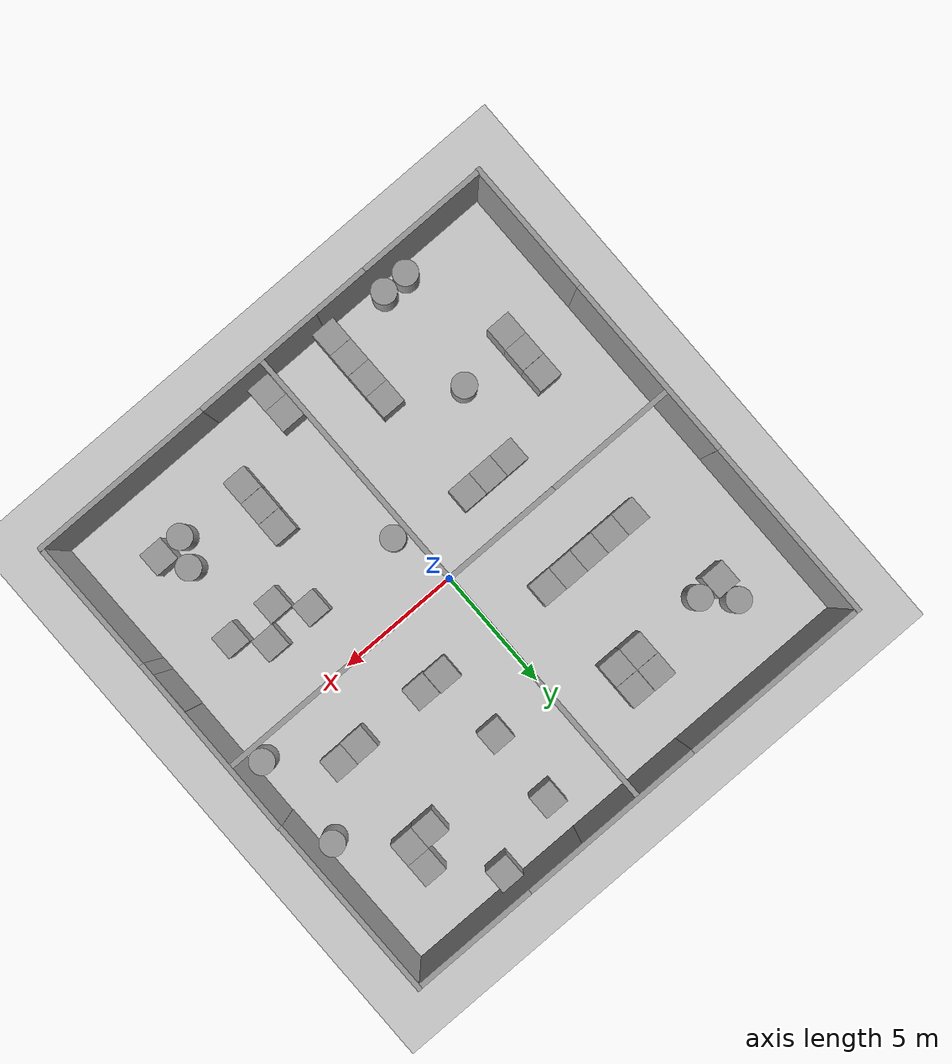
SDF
<sdf version="1.6">
 <world name="default">
  <light name="sun" type="directional">
   <pose>0 0 10 0 -0 0</pose>
   <diffuse>0.8 0.8 0.8 1</diffuse>
   <specular>0.1 0.1 0.1 1</specular>
   <attenuation>
    <range>1000</range>
    <constant>0.9</constant>
    <linear>0.01</linear>
    <quadratic>0.001</quadratic>
   </attenuation>
   <direction>-0.5 0.5 -1</direction>
  </light>
  <model name="ground_plane">
   <static>1</static>
   <link name="link">
    <collision name="collision">
     <geometry><plane><normal>0 0 1</normal><size>100 100</size></plane></geometry>
     <surface><friction><ode><mu>100</mu><mu2>50</mu2></ode></friction></surface>
    </collision>
    <visual name="visual">
     <cast_shadows>0</cast_shadows>
     <geometry><plane><normal>0 0 1</normal><size>100 100</size></plane></geometry>
     <material>
      <script><uri>file://media/materials/scripts/gazebo.material</uri><name>Gazebo/Grey</name></script>
     </material>
    </visual>
   </link>
  </model>
  <gravity>0 0 -9.8</gravity>
  <magnetic_field>6e-06 2.3e-05 -4.2e-05</magnetic_field>
  <atmosphere type="adiabatic"/>
  <physics name="default_physics" default="0" type="ode">
   <max_step_size>0.001</max_step_size>
   <real_time_factor>1</real_time_factor>
   <real_time_update_rate>1000</real_time_update_rate>
  </physics>
  <scene><ambient>0.4 0.4 0.4 1</ambient><background>0.7 0.7 0.7 1</background><shadows>1</shadows></scene>
  <spherical_coordinates>
   <surface_model>EARTH_WGS84</surface_model>
   <latitude_deg>0</latitude_deg>
   <longitude_deg>0</longitude_deg>
   <elevation>0</elevation>
   <heading_deg>0</heading_deg>
  </spherical_coordinates>
  <model name="unit_box_0">
   <pose>-2.49844 -9.49776 0.499995 1e-05 -0 0.001525</pose>
   <link name="link">
    <inertial>
     <mass>1</mass>
     <inertia>
      <ixx>0.166667</ixx>
      <ixy>0</ixy>
      <ixz>0</ixz>
      <iyy>0.166667</iyy>
      <iyz>0</iyz>
      <izz>0.166667</izz>
     </inertia>
    </inertial>
    <collision name="collision"><geometry><box><size>1 1 1</size></box></geometry></collision>
    <visual name="visual">
     <geometry><box><size>1 1 1</size></box></geometry>
     <material>
      <script><name>Gazebo/Grey</name><uri>file://media/materials/scripts/gazebo.material</uri></script>
     </material>
    </visual>
   </link>
  </model>
  <model name="unit_box_1">
   <pose>-2.49776 -8.49763 0.499995 0 1e-05 0.001523</pose>
   <link name="link">
    <inertial>
     <mass>1</mass>
     <inertia>
      <ixx>0.166667</ixx>
      <ixy>0</ixy>
      <ixz>0</ixz>
      <iyy>0.166667</iyy>
      <iyz>0</iyz>
      <izz>0.166667</izz>
     </inertia>
    </inertial>
    <collision name="collision"><geometry><box><size>1 1 1</size></box></geometry></collision>
    <visual name="visual">
     <geometry><box><size>1 1 1</size></box></geometry>
     <material>
      <script><name>Gazebo/Grey</name><uri>file://media/materials/scripts/gazebo.material</uri></script>
     </material>
    </visual>
   </link>
  </model>
  <model name="unit_box_2">
   <pose>-3.55815 -1.95195 0.5 0 -0 0.001237</pose>
   <link name="link">
    <inertial>
     <mass>1</mass>
     <inertia>
      <ixx>0.166667</ixx>
      <ixy>0</ixy>
      <ixz>0</ixz>
      <iyy>0.166667</iyy>
      <iyz>0</iyz>
      <izz>0.166667</izz>
     </inertia>
    </inertial>
    <collision name="collision"><geometry><box><size>1 1 1</size></box></geometry></collision>
    <visual name="visual">
     <geometry><box><size>1 1 1</size></box></geometry>
     <material>
      <script><name>Gazebo/Grey</name><uri>file://media/materials/scripts/gazebo.material</uri></script>
     </material>
    </visual>
   </link>
  </model>
  <model name="unit_box_3">
   <pose>-7.47853 -5.48862 0.499995 1e-05 -0 0.001882</pose>
   <link name="link">
    <inertial>
     <mass>1</mass>
     <inertia>
      <ixx>0.166667</ixx>
      <ixy>0</ixy>
      <ixz>0</ixz>
      <iyy>0.166667</iyy>
      <iyz>0</iyz>
      <izz>0.166667</izz>
     </inertia>
    </inertial>
    <collision name="collision"><geometry><box><size>1 1 1</size></box></geometry></collision>
    <visual name="visual">
     <geometry><box><size>1 1 1</size></box></geometry>
     <material>
      <script><name>Gazebo/Grey</name><uri>file://media/materials/scripts/gazebo.material</uri></script>
     </material>
    </visual>
   </link>
  </model>
  <model name="unit_box_4">
   <pose>-2.50633 -6.49754 0.499995 1e-05 -0 0.00159</pose>
   <link name="link">
    <inertial>
     <mass>1</mass>
     <inertia>
      <ixx>0.166667</ixx>
      <ixy>0</ixy>
      <ixz>0</ixz>
      <iyy>0.166667</iyy>
      <iyz>0</iyz>
      <izz>0.166667</izz>
     </inertia>
    </inertial>
    <collision name="collision"><geometry><box><size>1 1 1</size></box></geometry></collision>
    <visual name="visual">
     <geometry><box><size>1 1 1</size></box></geometry>
     <material>
      <script><name>Gazebo/Grey</name><uri>file://media/materials/scripts/gazebo.material</uri></script>
     </material>
    </visual>
   </link>
  </model>
  <model name="unit_cylinder_0">
   <pose>-5.03018 -9.50399 0.499996 2e-06 -0 0</pose>
   <link name="link">
    <inertial>
     <mass>1</mass>
     <inertia><ixx>0.145833</ixx><ixy>0</ixy><ixz>0</ixz><iyy>0.145833</iyy><iyz>0</iyz><izz>0.125</izz></inertia>
    </inertial>
    <collision name="collision">
     <geometry><cylinder><radius>0.5</radius><length>1</length></cylinder></geometry>
    </collision>
    <visual name="visual">
     <geometry><cylinder><radius>0.5</radius><length>1</length></cylinder></geometry>
     <material>
      <script><name>Gazebo/Grey</name><uri>file://media/materials/scripts/gazebo.material</uri></script>
     </material>
    </visual>
   </link>
  </model>
  <model name="unit_cylinder_1">
   <pose>-6.06796 -9.50399 0.499993 -2e-06 0 0</pose>
   <link name="link">
    <inertial>
     <mass>1</mass>
     <inertia><ixx>0.145833</ixx><ixy>0</ixy><ixz>0</ixz><iyy>0.145833</iyy><iyz>0</iyz><izz>0.125</izz></inertia>
    </inertial>
    <collision name="collision">
     <geometry><cylinder><radius>0.5</radius><length>1</length></cylinder></geometry>
    </collision>
    <visual name="visual">
     <geometry><cylinder><radius>0.5</radius><length>1</length></cylinder></geometry>
     <material>
      <script><name>Gazebo/Grey</name><uri>file://media/materials/scripts/gazebo.material</uri></script>
     </material>
    </visual>
   </link>
  </model>
  <model name="unit_box_5">
   <pose>-2.50217 -7.49759 0.499995 1e-05 -0 0.0015</pose>
   <link name="link">
    <inertial>
     <mass>1</mass>
     <inertia>
      <ixx>0.166667</ixx>
      <ixy>0</ixy>
      <ixz>0</ixz>
      <iyy>0.166667</iyy>
      <iyz>0</iyz>
      <izz>0.166667</izz>
     </inertia>
    </inertial>
    <collision name="collision"><geometry><box><size>1 1 1</size></box></geometry></collision>
    <visual name="visual">
     <geometry><box><size>1 1 1</size></box></geometry>
     <material>
      <script><name>Gazebo/Grey</name><uri>file://media/materials/scripts/gazebo.material</uri></script>
     </material>
    </visual>
   </link>
  </model>
  <model name="unit_box_6">
   <pose>-7.47739 -4.4886 0.499995 1e-05 -0 0.001886</pose>
   <link name="link">
    <inertial>
     <mass>1</mass>
     <inertia>
      <ixx>0.166667</ixx>
      <ixy>0</ixy>
      <ixz>0</ixz>
      <iyy>0.166667</iyy>
      <iyz>0</iyz>
      <izz>0.166667</izz>
     </inertia>
    </inertial>
    <collision name="collision"><geometry><box><size>1 1 1</size></box></geometry></collision>
    <visual name="visual">
     <geometry><box><size>1 1 1</size></box></geometry>
     <material>
      <script><name>Gazebo/Grey</name><uri>file://media/materials/scripts/gazebo.material</uri></script>
     </material>
    </visual>
   </link>
  </model>
  <model name="unit_box_7">
   <pose>-4.55826 -1.95244 0.5 0 -0 0.001449</pose>
   <link name="link">
    <inertial>
     <mass>1</mass>
     <inertia>
      <ixx>0.166667</ixx>
      <ixy>0</ixy>
      <ixz>0</ixz>
      <iyy>0.166667</iyy>
      <iyz>0</iyz>
      <izz>0.166667</izz>
     </inertia>
    </inertial>
    <collision name="collision"><geometry><box><size>1 1 1</size></box></geometry></collision>
    <visual name="visual">
     <geometry><box><size>1 1 1</size></box></geometry>
     <material>
      <script><name>Gazebo/Grey</name><uri>file://media/materials/scripts/gazebo.material</uri></script>
     </material>
    </visual>
   </link>
  </model>
  <model name="unit_cylinder_2">
   <pose>-5.02407 -4.99371 0.499997 0 -0 0</pose>
   <link name="link">
    <inertial>
     <mass>1</mass>
     <inertia><ixx>0.145833</ixx><ixy>0</ixy><ixz>0</ixz><iyy>0.145833</iyy><iyz>0</iyz><izz>0.125</izz></inertia>
    </inertial>
    <collision name="collision">
     <geometry><cylinder><radius>0.5</radius><length>1</length></cylinder></geometry>
    </collision>
    <visual name="visual">
     <geometry><cylinder><radius>0.5</radius><length>1</length></cylinder></geometry>
     <material>
      <script><name>Gazebo/Grey</name><uri>file://media/materials/scripts/gazebo.material</uri></script>
     </material>
    </visual>
   </link>
  </model>
  <model name="unit_cylinder_3">
   <pose>-6.49104 6.49085 0.499994 -3e-06 -1e-06 0.000831</pose>
   <link name="link">
    <inertial>
     <mass>1</mass>
     <inertia><ixx>0.145833</ixx><ixy>0</ixy><ixz>0</ixz><iyy>0.145833</iyy><iyz>0</iyz><izz>0.125</izz></inertia>
    </inertial>
    <collision name="collision">
     <geometry><cylinder><radius>0.5</radius><length>1</length></cylinder></geometry>
    </collision>
    <visual name="visual">
     <geometry><cylinder><radius>0.5</radius><length>1</length></cylinder></geometry>
     <material>
      <script><name>Gazebo/Grey</name><uri>file://media/materials/scripts/gazebo.material</uri></script>
     </material>
    </visual>
   </link>
  </model>
  <model name="unit_box_8">
   <pose>-2.55805 -1.9499 0.499995 0 1e-05 0.001076</pose>
   <link name="link">
    <inertial>
     <mass>1</mass>
     <inertia>
      <ixx>0.166667</ixx>
      <ixy>0</ixy>
      <ixz>0</ixz>
      <iyy>0.166667</iyy>
      <iyz>0</iyz>
      <izz>0.166667</izz>
     </inertia>
    </inertial>
    <collision name="collision"><geometry><box><size>1 1 1</size></box></geometry></collision>
    <visual name="visual">
     <geometry><box><size>1 1 1</size></box></geometry>
     <material>
      <script><name>Gazebo/Grey</name><uri>file://media/materials/scripts/gazebo.material</uri></script>
     </material>
    </visual>
   </link>
  </model>
  <model name="unit_box_9">
   <pose>-7.47649 -3.4838 0.499995 1e-05 -0 0</pose>
   <link name="link">
    <inertial>
     <mass>1</mass>
     <inertia>
      <ixx>0.166667</ixx>
      <ixy>0</ixy>
      <ixz>0</ixz>
      <iyy>0.166667</iyy>
      <iyz>0</iyz>
      <izz>0.166667</izz>
     </inertia>
    </inertial>
    <collision name="collision"><geometry><box><size>1 1 1</size></box></geometry></collision>
    <visual name="visual">
     <geometry><box><size>1 1 1</size></box></geometry>
     <material>
      <script><name>Gazebo/Grey</name><uri>file://media/materials/scripts/gazebo.material</uri></script>
     </material>
    </visual>
   </link>
  </model>
  <model name="unit_cylinder_4">
   <pose>-7.51147 7.47657 0.499994 -4e-06 -4e-06 -0.000932</pose>
   <link name="link">
    <inertial>
     <mass>1</mass>
     <inertia><ixx>0.145833</ixx><ixy>0</ixy><ixz>0</ixz><iyy>0.145833</iyy><iyz>0</iyz><izz>0.125</izz></inertia>
    </inertial>
    <collision name="collision">
     <geometry><cylinder><radius>0.5</radius><length>1</length></cylinder></geometry>
    </collision>
    <visual name="visual">
     <geometry><cylinder><radius>0.5</radius><length>1</length></cylinder></geometry>
     <material>
      <script><name>Gazebo/Grey</name><uri>file://media/materials/scripts/gazebo.material</uri></script>
     </material>
    </visual>
   </link>
  </model>
  <model name="unit_box_10">
   <pose>-5.50901 2.58447 0.499995 1e-05 -0 -0.001023</pose>
   <link name="link">
    <inertial>
     <mass>1</mass>
     <inertia>
      <ixx>0.166667</ixx>
      <ixy>0</ixy>
      <ixz>0</ixz>
      <iyy>0.166667</iyy>
      <iyz>0</iyz>
      <izz>0.166667</izz>
     </inertia>
    </inertial>
    <collision name="collision"><geometry><box><size>1 1 1</size></box></geometry></collision>
    <visual name="visual">
     <geometry><box><size>1 1 1</size></box></geometry>
     <material>
      <script><name>Gazebo/Grey</name><uri>file://media/materials/scripts/gazebo.material</uri></script>
     </material>
    </visual>
   </link>
  </model>
  <model name="unit_box_11">
   <pose>-4.50875 2.58507 0.499995 0 -1e-05 -0.000791</pose>
   <link name="link">
    <inertial>
     <mass>1</mass>
     <inertia>
      <ixx>0.166667</ixx>
      <ixy>0</ixy>
      <ixz>0</ixz>
      <iyy>0.166667</iyy>
      <iyz>0</iyz>
      <izz>0.166667</izz>
     </inertia>
    </inertial>
    <collision name="collision"><geometry><box><size>1 1 1</size></box></geometry></collision>
    <visual name="visual">
     <geometry><box><size>1 1 1</size></box></geometry>
     <material>
      <script><name>Gazebo/Grey</name><uri>file://media/materials/scripts/gazebo.material</uri></script>
     </material>
    </visual>
   </link>
  </model>
  <model name="unit_box_12">
   <pose>-3.50855 2.58687 0.499995 0 1e-05 -0.000618</pose>
   <link name="link">
    <inertial>
     <mass>1</mass>
     <inertia>
      <ixx>0.166667</ixx>
      <ixy>0</ixy>
      <ixz>0</ixz>
      <iyy>0.166667</iyy>
      <iyz>0</iyz>
      <izz>0.166667</izz>
     </inertia>
    </inertial>
    <collision name="collision"><geometry><box><size>1 1 1</size></box></geometry></collision>
    <visual name="visual">
     <geometry><box><size>1 1 1</size></box></geometry>
     <material>
      <script><name>Gazebo/Grey</name><uri>file://media/materials/scripts/gazebo.material</uri></script>
     </material>
    </visual>
   </link>
  </model>
  <model name="unit_box_13">
   <pose>-2.50853 2.57606 0.499995 0 -1e-05 -0.000686</pose>
   <link name="link">
    <inertial>
     <mass>1</mass>
     <inertia>
      <ixx>0.166667</ixx>
      <ixy>0</ixy>
      <ixz>0</ixz>
      <iyy>0.166667</iyy>
      <iyz>0</iyz>
      <izz>0.166667</izz>
     </inertia>
    </inertial>
    <collision name="collision"><geometry><box><size>1 1 1</size></box></geometry></collision>
    <visual name="visual">
     <geometry><box><size>1 1 1</size></box></geometry>
     <material>
      <script><name>Gazebo/Grey</name><uri>file://media/materials/scripts/gazebo.material</uri></script>
     </material>
    </visual>
   </link>
  </model>
  <model name="unit_box_14">
   <pose>-7.49103 6.4766 0.499995 0 1e-05 0.002112</pose>
   <link name="link">
    <inertial>
     <mass>1</mass>
     <inertia>
      <ixx>0.166667</ixx>
      <ixy>0</ixy>
      <ixz>0</ixz>
      <iyy>0.166667</iyy>
      <iyz>0</iyz>
      <izz>0.166667</izz>
     </inertia>
    </inertial>
    <collision name="collision"><geometry><box><size>1 1 1</size></box></geometry></collision>
    <visual name="visual">
     <geometry><box><size>1 1 1</size></box></geometry>
     <material>
      <script><name>Gazebo/Grey</name><uri>file://media/materials/scripts/gazebo.material</uri></script>
     </material>
    </visual>
   </link>
  </model>
  <model name="grey_wall">
   <static>1</static>
   <link name="link">
    <pose>0 0 1.4 0 -0 0</pose>
    <collision name="collision"><geometry><box><size>7.5 0.2 2.8</size></box></geometry></collision>
    <visual name="visual">
     <cast_shadows>0</cast_shadows>
     <geometry><box><size>7.5 0.2 2.8</size></box></geometry>
     <material>
      <script>
       <uri>model://grey_wall/materials/scripts</uri>
       <uri>model://grey_wall/materials/textures</uri>
       <name>vrc/grey_wall</name>
      </script>
     </material>
    </visual>
   </link>
   <pose>-6.25724 10.1174 0 0 -0 0</pose>
  </model>
  <model name="grey_wall_0">
   <static>1</static>
   <link name="link">
    <pose>0 0 1.4 0 -0 0</pose>
    <collision name="collision"><geometry><box><size>7.5 0.2 2.8</size></box></geometry></collision>
    <visual name="visual">
     <cast_shadows>0</cast_shadows>
     <geometry><box><size>7.5 0.2 2.8</size></box></geometry>
     <material>
      <script>
       <uri>model://grey_wall/materials/scripts</uri>
       <uri>model://grey_wall/materials/textures</uri>
       <name>vrc/grey_wall</name>
      </script>
     </material>
    </visual>
   </link>
   <pose>1.22625 10.112 0 0 -0 0</pose>
  </model>
  <model name="grey_wall_1">
   <static>1</static>
   <link name="link">
    <pose>0 0 1.4 0 -0 0</pose>
    <collision name="collision"><geometry><box><size>7.5 0.2 2.8</size></box></geometry></collision>
    <visual name="visual">
     <cast_shadows>0</cast_shadows>
     <geometry><box><size>7.5 0.2 2.8</size></box></geometry>
     <material>
      <script>
       <uri>model://grey_wall/materials/scripts</uri>
       <uri>model://grey_wall/materials/textures</uri>
       <name>vrc/grey_wall</name>
      </script>
     </material>
    </visual>
   </link>
   <pose>6.26734 10.1117 0 0 -0 0</pose>
  </model>
  <model name="grey_wall_2">
   <static>1</static>
   <link name="link">
    <pose>0 0 1.4 0 -0 0</pose>
    <collision name="collision"><geometry><box><size>7.5 0.2 2.8</size></box></geometry></collision>
    <visual name="visual">
     <cast_shadows>0</cast_shadows>
     <geometry><box><size>7.5 0.2 2.8</size></box></geometry>
     <material>
      <script>
       <uri>model://grey_wall/materials/scripts</uri>
       <uri>model://grey_wall/materials/textures</uri>
       <name>vrc/grey_wall</name>
      </script>
     </material>
    </visual>
   </link>
   <pose>10.1193 6.46701 0 0 0 -1.56733</pose>
  </model>
  <model name="grey_wall_2_clone">
   <static>1</static>
   <link name="link">
    <pose>0 0 1.4 0 -0 0</pose>
    <collision name="collision"><geometry><box><size>7.5 0.2 2.8</size></box></geometry></collision>
    <visual name="visual">
     <cast_shadows>0</cast_shadows>
     <geometry><box><size>7.5 0.2 2.8</size></box></geometry>
     <material>
      <script>
       <uri>model://grey_wall/materials/scripts</uri>
       <uri>model://grey_wall/materials/textures</uri>
       <name>vrc/grey_wall</name>
      </script>
     </material>
    </visual>
   </link>
   <pose>10.1258 -0.989664 0 0 0 -1.57745</pose>
  </model>
  <model name="grey_wall_2_clone_0">
   <static>1</static>
   <link name="link">
    <pose>0 0 1.4 0 -0 0</pose>
    <collision name="collision"><geometry><box><size>7.5 0.2 2.8</size></box></geometry></collision>
    <visual name="visual">
     <cast_shadows>0</cast_shadows>
     <geometry><box><size>7.5 0.2 2.8</size></box></geometry>
     <material>
      <script>
       <uri>model://grey_wall/materials/scripts</uri>
       <uri>model://grey_wall/materials/textures</uri>
       <name>vrc/grey_wall</name>
      </script>
     </material>
    </visual>
   </link>
   <pose>10.1116 -6.24607 0 0 0 -1.56733</pose>
  </model>
  <model name="grey_wall_3">
   <static>1</static>
   <link name="link">
    <pose>0 0 1.4 0 -0 0</pose>
    <collision name="collision"><geometry><box><size>7.5 0.2 2.8</size></box></geometry></collision>
    <visual name="visual">
     <cast_shadows>0</cast_shadows>
     <geometry><box><size>7.5 0.2 2.8</size></box></geometry>
     <material>
      <script>
       <uri>model://grey_wall/materials/scripts</uri>
       <uri>model://grey_wall/materials/textures</uri>
       <name>vrc/grey_wall</name>
      </script>
     </material>
    </visual>
   </link>
   <pose>6.46114 -10.1013 0 0 -0 0</pose>
  </model>
  <model name="grey_wall_4">
   <static>1</static>
   <link name="link">
    <pose>0 0 1.4 0 -0 0</pose>
    <collision name="collision"><geometry><box><size>7.5 0.2 2.8</size></box></geometry></collision>
    <visual name="visual">
     <cast_shadows>0</cast_shadows>
     <geometry><box><size>7.5 0.2 2.8</size></box></geometry>
     <material>
      <script>
       <uri>model://grey_wall/materials/scripts</uri>
       <uri>model://grey_wall/materials/textures</uri>
       <name>vrc/grey_wall</name>
      </script>
     </material>
    </visual>
   </link>
   <pose>-1.02707 -10.1049 0 0 -0 0</pose>
  </model>
  <model name="grey_wall_5">
   <static>1</static>
   <link name="link">
    <pose>0 0 1.4 0 -0 0</pose>
    <collision name="collision"><geometry><box><size>7.5 0.2 2.8</size></box></geometry></collision>
    <visual name="visual">
     <cast_shadows>0</cast_shadows>
     <geometry><box><size>7.5 0.2 2.8</size></box></geometry>
     <material>
      <script>
       <uri>model://grey_wall/materials/scripts</uri>
       <uri>model://grey_wall/materials/textures</uri>
       <name>vrc/grey_wall</name>
      </script>
     </material>
    </visual>
   </link>
   <pose>-6.2591 -10.104 0 0 -0 0</pose>
  </model>
  <model name="grey_wall_6">
   <static>1</static>
   <link name="link">
    <pose>0 0 1.4 0 -0 0</pose>
    <collision name="collision"><geometry><box><size>7.5 0.2 2.8</size></box></geometry></collision>
    <visual name="visual">
     <cast_shadows>0</cast_shadows>
     <geometry><box><size>7.5 0.2 2.8</size></box></geometry>
     <material>
      <script>
       <uri>model://grey_wall/materials/scripts</uri>
       <uri>model://grey_wall/materials/textures</uri>
       <name>vrc/grey_wall</name>
      </script>
     </material>
    </visual>
   </link>
   <pose>-10.1056 6.46121 0 0 0 -1.56871</pose>
  </model>
  <model name="grey_wall_6_clone">
   <static>1</static>
   <link name="link">
    <pose>0 0 1.4 0 -0 0</pose>
    <collision name="collision"><geometry><box><size>7.5 0.2 2.8</size></box></geometry></collision>
    <visual name="visual">
     <cast_shadows>0</cast_shadows>
     <geometry><box><size>7.5 0.2 2.8</size></box></geometry>
     <material>
      <script>
       <uri>model://grey_wall/materials/scripts</uri>
       <uri>model://grey_wall/materials/textures</uri>
       <name>vrc/grey_wall</name>
      </script>
     </material>
    </visual>
   </link>
   <pose>-10.0957 -1.0384 0 0 0 -1.56871</pose>
  </model>
  <model name="grey_wall_6_clone_clone">
   <static>1</static>
   <link name="link">
    <pose>0 0 1.4 0 -0 0</pose>
    <collision name="collision"><geometry><box><size>7.5 0.2 2.8</size></box></geometry></collision>
    <visual name="visual">
     <cast_shadows>0</cast_shadows>
     <geometry><box><size>7.5 0.2 2.8</size></box></geometry>
     <material>
      <script>
       <uri>model://grey_wall/materials/scripts</uri>
       <uri>model://grey_wall/materials/textures</uri>
       <name>vrc/grey_wall</name>
      </script>
     </material>
    </visual>
   </link>
   <pose>-10.0857 -6.47946 0 0 0 -1.56871</pose>
  </model>
  <model name="grey_wall_7">
   <static>1</static>
   <link name="link">
    <pose>0 0 1.4 0 -0 0</pose>
    <collision name="collision"><geometry><box><size>7.5 0.2 2.8</size></box></geometry></collision>
    <visual name="visual">
     <cast_shadows>0</cast_shadows>
     <geometry><box><size>7.5 0.2 2.8</size></box></geometry>
     <material>
      <script>
       <uri>model://grey_wall/materials/scripts</uri>
       <uri>model://grey_wall/materials/textures</uri>
       <name>vrc/grey_wall</name>
      </script>
     </material>
    </visual>
   </link>
   <pose>6.40587 -0.002141 0 0 -0 0</pose>
  </model>
  <model name="grey_wall_8">
   <static>1</static>
   <link name="link">
    <pose>0 0 1.4 0 -0 0</pose>
    <collision name="collision"><geometry><box><size>7.5 0.2 2.8</size></box></geometry></collision>
    <visual name="visual">
     <cast_shadows>0</cast_shadows>
     <geometry><box><size>7.5 0.2 2.8</size></box></geometry>
     <material>
      <script>
       <uri>model://grey_wall/materials/scripts</uri>
       <uri>model://grey_wall/materials/textures</uri>
       <name>vrc/grey_wall</name>
      </script>
     </material>
    </visual>
   </link>
   <pose>-1.0698 -0.009769 0 0 -0 0</pose>
  </model>
  <model name="grey_wall_9">
   <static>1</static>
   <link name="link">
    <pose>0 0 1.4 0 -0 0</pose>
    <collision name="collision"><geometry><box><size>7.5 0.2 2.8</size></box></geometry></collision>
    <visual name="visual">
     <cast_shadows>0</cast_shadows>
     <geometry><box><size>7.5 0.2 2.8</size></box></geometry>
     <material>
      <script>
       <uri>model://grey_wall/materials/scripts</uri>
       <uri>model://grey_wall/materials/textures</uri>
       <name>vrc/grey_wall</name>
      </script>
     </material>
    </visual>
   </link>
   <pose>-6.30682 -0.0123 0 0 -0 0</pose>
  </model>
  <model name="grey_wall_6_clone_0">
   <static>1</static>
   <link name="link">
    <pose>0 0 1.4 0 -0 0</pose>
    <collision name="collision"><geometry><box><size>7.5 0.2 2.8</size></box></geometry></collision>
    <visual name="visual">
     <cast_shadows>0</cast_shadows>
     <geometry><box><size>7.5 0.2 2.8</size></box></geometry>
     <material>
      <script>
       <uri>model://grey_wall/materials/scripts</uri>
       <uri>model://grey_wall/materials/textures</uri>
       <name>vrc/grey_wall</name>
      </script>
     </material>
    </visual>
   </link>
   <pose>-0.029863 6.28702 0 0 0 -1.56871</pose>
  </model>
  <model name="grey_wall_6_clone_0_clone">
   <static>1</static>
   <link name="link">
    <pose>0 0 1.4 0 -0 0</pose>
    <collision name="collision"><geometry><box><size>7.5 0.2 2.8</size></box></geometry></collision>
    <visual name="visual">
     <cast_shadows>0</cast_shadows>
     <geometry><box><size>7.5 0.2 2.8</size></box></geometry>
     <material>
      <script>
       <uri>model://grey_wall/materials/scripts</uri>
       <uri>model://grey_wall/materials/textures</uri>
       <name>vrc/grey_wall</name>
      </script>
     </material>
    </visual>
   </link>
   <pose>-0.015119 -1.21034 0 0 0 -1.56871</pose>
  </model>
  <model name="grey_wall_6_clone_0_clone_0">
   <static>1</static>
   <link name="link">
    <pose>0 0 1.4 0 -0 0</pose>
    <collision name="collision"><geometry><box><size>7.5 0.2 2.8</size></box></geometry></collision>
    <visual name="visual">
     <cast_shadows>0</cast_shadows>
     <geometry><box><size>7.5 0.2 2.8</size></box></geometry>
     <material>
      <script>
       <uri>model://grey_wall/materials/scripts</uri>
       <uri>model://grey_wall/materials/textures</uri>
       <name>vrc/grey_wall</name>
      </script>
     </material>
    </visual>
   </link>
   <pose>-0.005621 -6.336 0 0 0 -1.56871</pose>
  </model>
  <model name="unit_box_15">
   <pose>-6.50915 2.58101 0.499995 1e-05 -0 -0.00109</pose>
   <link name="link">
    <inertial>
     <mass>1</mass>
     <inertia>
      <ixx>0.166667</ixx>
      <ixy>0</ixy>
      <ixz>0</ixz>
      <iyy>0.166667</iyy>
      <iyz>0</iyz>
      <izz>0.166667</izz>
     </inertia>
    </inertial>
    <collision name="collision"><geometry><box><size>1 1 1</size></box></geometry></collision>
    <visual name="visual">
     <geometry><box><size>1 1 1</size></box></geometry>
     <material>
      <script><name>Gazebo/Grey</name><uri>file://media/materials/scripts/gazebo.material</uri></script>
     </material>
    </visual>
   </link>
  </model>
  <model name="unit_box_16">
   <pose>-2.5235 6.48849 0.499995 1e-05 -0 7.9e-05</pose>
   <link name="link">
    <inertial>
     <mass>1</mass>
     <inertia>
      <ixx>0.166667</ixx>
      <ixy>0</ixy>
      <ixz>0</ixz>
      <iyy>0.166667</iyy>
      <iyz>0</iyz>
      <izz>0.166667</izz>
     </inertia>
    </inertial>
    <collision name="collision"><geometry><box><size>1 1 1</size></box></geometry></collision>
    <visual name="visual">
     <geometry><box><size>1 1 1</size></box></geometry>
     <material>
      <script><name>Gazebo/Grey</name><uri>file://media/materials/scripts/gazebo.material</uri></script>
     </material>
    </visual>
   </link>
  </model>
  <model name="unit_box_17">
   <pose>-2.52255 7.49391 0.499995 0 1e-05 -0.005374</pose>
   <link name="link">
    <inertial>
     <mass>1</mass>
     <inertia>
      <ixx>0.166667</ixx>
      <ixy>0</ixy>
      <ixz>0</ixz>
      <iyy>0.166667</iyy>
      <iyz>0</iyz>
      <izz>0.166667</izz>
     </inertia>
    </inertial>
    <collision name="collision"><geometry><box><size>1 1 1</size></box></geometry></collision>
    <visual name="visual">
     <geometry><box><size>1 1 1</size></box></geometry>
     <material>
      <script><name>Gazebo/Grey</name><uri>file://media/materials/scripts/gazebo.material</uri></script>
     </material>
    </visual>
   </link>
  </model>
  <model name="unit_box_18">
   <pose>-3.52396 6.49696 0.499995 0 1e-05 -0.000845</pose>
   <link name="link">
    <inertial>
     <mass>1</mass>
     <inertia>
      <ixx>0.166667</ixx>
      <ixy>0</ixy>
      <ixz>0</ixz>
      <iyy>0.166667</iyy>
      <iyz>0</iyz>
      <izz>0.166667</izz>
     </inertia>
    </inertial>
    <collision name="collision"><geometry><box><size>1 1 1</size></box></geometry></collision>
    <visual name="visual">
     <geometry><box><size>1 1 1</size></box></geometry>
     <material>
      <script><name>Gazebo/Grey</name><uri>file://media/materials/scripts/gazebo.material</uri></script>
     </material>
    </visual>
   </link>
  </model>
  <model name="unit_box_19">
   <pose>-3.52957 7.50308 0.499995 1e-05 0 -0.005023</pose>
   <link name="link">
    <inertial>
     <mass>1</mass>
     <inertia>
      <ixx>0.166667</ixx>
      <ixy>0</ixy>
      <ixz>0</ixz>
      <iyy>0.166667</iyy>
      <iyz>0</iyz>
      <izz>0.166667</izz>
     </inertia>
    </inertial>
    <collision name="collision"><geometry><box><size>1 1 1</size></box></geometry></collision>
    <visual name="visual">
     <geometry><box><size>1 1 1</size></box></geometry>
     <material>
      <script><name>Gazebo/Grey</name><uri>file://media/materials/scripts/gazebo.material</uri></script>
     </material>
    </visual>
   </link>
  </model>
  <model name="unit_box_20">
   <pose>0.616166 -9.50404 0.5 1e-06 -0 -0.001715</pose>
   <link name="link">
    <inertial>
     <mass>1</mass>
     <inertia>
      <ixx>0.166667</ixx>
      <ixy>0</ixy>
      <ixz>0</ixz>
      <iyy>0.166667</iyy>
      <iyz>0</iyz>
      <izz>0.166667</izz>
     </inertia>
    </inertial>
    <collision name="collision"><geometry><box><size>1 1 1</size></box></geometry></collision>
    <visual name="visual">
     <geometry><box><size>1 1 1</size></box></geometry>
     <material>
      <script><name>Gazebo/Grey</name><uri>file://media/materials/scripts/gazebo.material</uri></script>
     </material>
    </visual>
   </link>
  </model>
  <model name="unit_box_21">
   <pose>0.604479 -8.50384 0.5 0 0 -0.001831</pose>
   <link name="link">
    <inertial>
     <mass>1</mass>
     <inertia>
      <ixx>0.166667</ixx>
      <ixy>0</ixy>
      <ixz>0</ixz>
      <iyy>0.166667</iyy>
      <iyz>0</iyz>
      <izz>0.166667</izz>
     </inertia>
    </inertial>
    <collision name="collision"><geometry><box><size>1 1 1</size></box></geometry></collision>
    <visual name="visual">
     <geometry><box><size>1 1 1</size></box></geometry>
     <material>
      <script><name>Gazebo/Grey</name><uri>file://media/materials/scripts/gazebo.material</uri></script>
     </material>
    </visual>
   </link>
  </model>
  <model name="unit_box_22">
   <pose>3.49382 -7.53189 0.499995 0 1e-05 0</pose>
   <link name="link">
    <inertial>
     <mass>1</mass>
     <inertia>
      <ixx>0.166667</ixx>
      <ixy>0</ixy>
      <ixz>0</ixz>
      <iyy>0.166667</iyy>
      <iyz>0</iyz>
      <izz>0.166667</izz>
     </inertia>
    </inertial>
    <collision name="collision"><geometry><box><size>1 1 1</size></box></geometry></collision>
    <visual name="visual">
     <geometry><box><size>1 1 1</size></box></geometry>
     <material>
      <script><name>Gazebo/Grey</name><uri>file://media/materials/scripts/gazebo.material</uri></script>
     </material>
    </visual>
   </link>
  </model>
  <model name="unit_box_23">
   <pose>3.49681 -6.52691 0.499995 -1e-05 0 0</pose>
   <link name="link">
    <inertial>
     <mass>1</mass>
     <inertia>
      <ixx>0.166667</ixx>
      <ixy>0</ixy>
      <ixz>0</ixz>
      <iyy>0.166667</iyy>
      <iyz>0</iyz>
      <izz>0.166667</izz>
     </inertia>
    </inertial>
    <collision name="collision"><geometry><box><size>1 1 1</size></box></geometry></collision>
    <visual name="visual">
     <geometry><box><size>1 1 1</size></box></geometry>
     <material>
      <script><name>Gazebo/Grey</name><uri>file://media/materials/scripts/gazebo.material</uri></script>
     </material>
    </visual>
   </link>
  </model>
  <model name="unit_box_24">
   <pose>3.50502 -5.52306 0.499995 0 1e-05 0</pose>
   <link name="link">
    <inertial>
     <mass>1</mass>
     <inertia>
      <ixx>0.166667</ixx>
      <ixy>0</ixy>
      <ixz>0</ixz>
      <iyy>0.166667</iyy>
      <iyz>0</iyz>
      <izz>0.166667</izz>
     </inertia>
    </inertial>
    <collision name="collision"><geometry><box><size>1 1 1</size></box></geometry></collision>
    <visual name="visual">
     <geometry><box><size>1 1 1</size></box></geometry>
     <material>
      <script><name>Gazebo/Grey</name><uri>file://media/materials/scripts/gazebo.material</uri></script>
     </material>
    </visual>
   </link>
  </model>
  <model name="unit_box_25">
   <pose>5.49775 -3.48698 0.499995 0 -1e-05 0.003113</pose>
   <link name="link">
    <inertial>
     <mass>1</mass>
     <inertia>
      <ixx>0.166667</ixx>
      <ixy>0</ixy>
      <ixz>0</ixz>
      <iyy>0.166667</iyy>
      <iyz>0</iyz>
      <izz>0.166667</izz>
     </inertia>
    </inertial>
    <collision name="collision"><geometry><box><size>1 1 1</size></box></geometry></collision>
    <visual name="visual">
     <geometry><box><size>1 1 1</size></box></geometry>
     <material>
      <script><name>Gazebo/Grey</name><uri>file://media/materials/scripts/gazebo.material</uri></script>
     </material>
    </visual>
   </link>
  </model>
  <model name="unit_box_26">
   <pose>6.47891 -2.47746 0.499995 0 1e-05 0</pose>
   <link name="link">
    <inertial>
     <mass>1</mass>
     <inertia>
      <ixx>0.166667</ixx>
      <ixy>0</ixy>
      <ixz>0</ixz>
      <iyy>0.166667</iyy>
      <iyz>0</iyz>
      <izz>0.166667</izz>
     </inertia>
    </inertial>
    <collision name="collision"><geometry><box><size>1 1 1</size></box></geometry></collision>
    <visual name="visual">
     <geometry><box><size>1 1 1</size></box></geometry>
     <material>
      <script><name>Gazebo/Grey</name><uri>file://media/materials/scripts/gazebo.material</uri></script>
     </material>
    </visual>
   </link>
  </model>
  <model name="unit_box_27">
   <pose>4.51523 -2.48999 0.499995 0 -1e-05 0.003044</pose>
   <link name="link">
    <inertial>
     <mass>1</mass>
     <inertia>
      <ixx>0.166667</ixx>
      <ixy>0</ixy>
      <ixz>0</ixz>
      <iyy>0.166667</iyy>
      <iyz>0</iyz>
      <izz>0.166667</izz>
     </inertia>
    </inertial>
    <collision name="collision"><geometry><box><size>1 1 1</size></box></geometry></collision>
    <visual name="visual">
     <geometry><box><size>1 1 1</size></box></geometry>
     <material>
      <script><name>Gazebo/Grey</name><uri>file://media/materials/scripts/gazebo.material</uri></script>
     </material>
    </visual>
   </link>
  </model>
  <model name="unit_box_28">
   <pose>7.49726 -3.52584 0.499995 0 1e-05 0</pose>
   <link name="link">
    <inertial>
     <mass>1</mass>
     <inertia>
      <ixx>0.166667</ixx>
      <ixy>0</ixy>
      <ixz>0</ixz>
      <iyy>0.166667</iyy>
      <iyz>0</iyz>
      <izz>0.166667</izz>
     </inertia>
    </inertial>
    <collision name="collision"><geometry><box><size>1 1 1</size></box></geometry></collision>
    <visual name="visual">
     <geometry><box><size>1 1 1</size></box></geometry>
     <material>
      <script><name>Gazebo/Grey</name><uri>file://media/materials/scripts/gazebo.material</uri></script>
     </material>
    </visual>
   </link>
  </model>
  <model name="unit_box_29">
   <pose>7.51233 -7.52278 0.499995 -1e-05 0 0</pose>
   <link name="link">
    <inertial>
     <mass>1</mass>
     <inertia>
      <ixx>0.166667</ixx>
      <ixy>0</ixy>
      <ixz>0</ixz>
      <iyy>0.166667</iyy>
      <iyz>0</iyz>
      <izz>0.166667</izz>
     </inertia>
    </inertial>
    <collision name="collision"><geometry><box><size>1 1 1</size></box></geometry></collision>
    <visual name="visual">
     <geometry><box><size>1 1 1</size></box></geometry>
     <material>
      <script><name>Gazebo/Grey</name><uri>file://media/materials/scripts/gazebo.material</uri></script>
     </material>
    </visual>
   </link>
  </model>
  <model name="unit_cylinder_5">
   <pose>6.45349 -7.58037 0.499993 -3e-06 3e-06 0</pose>
   <link name="link">
    <inertial>
     <mass>1</mass>
     <inertia><ixx>0.145833</ixx><ixy>0</ixy><ixz>0</ixz><iyy>0.145833</iyy><iyz>0</iyz><izz>0.125</izz></inertia>
    </inertial>
    <collision name="collision">
     <geometry><cylinder><radius>0.5</radius><length>1</length></cylinder></geometry>
    </collision>
    <visual name="visual">
     <geometry><cylinder><radius>0.5</radius><length>1</length></cylinder></geometry>
     <material>
      <script><name>Gazebo/Grey</name><uri>file://media/materials/scripts/gazebo.material</uri></script>
     </material>
    </visual>
   </link>
  </model>
  <model name="unit_cylinder_6">
   <pose>0.58752 -2.47063 0.499994 -3e-06 -2e-06 -1e-06</pose>
   <link name="link">
    <inertial>
     <mass>1</mass>
     <inertia><ixx>0.145833</ixx><ixy>0</ixy><ixz>0</ixz><iyy>0.145833</iyy><iyz>0</iyz><izz>0.125</izz></inertia>
    </inertial>
    <collision name="collision">
     <geometry><cylinder><radius>0.5</radius><length>1</length></cylinder></geometry>
    </collision>
    <visual name="visual">
     <geometry><cylinder><radius>0.5</radius><length>1</length></cylinder></geometry>
     <material>
      <script><name>Gazebo/Grey</name><uri>file://media/materials/scripts/gazebo.material</uri></script>
     </material>
    </visual>
   </link>
  </model>
  <model name="unit_cylinder_7">
   <pose>6.94305 -6.51844 0.499992 -3e-06 3e-06 0</pose>
   <link name="link">
    <inertial>
     <mass>1</mass>
     <inertia><ixx>0.145833</ixx><ixy>0</ixy><ixz>0</ixz><iyy>0.145833</iyy><iyz>0</iyz><izz>0.125</izz></inertia>
    </inertial>
    <collision name="collision">
     <geometry><cylinder><radius>0.5</radius><length>1</length></cylinder></geometry>
    </collision>
    <visual name="visual">
     <geometry><cylinder><radius>0.5</radius><length>1</length></cylinder></geometry>
     <material>
      <script><name>Gazebo/Grey</name><uri>file://media/materials/scripts/gazebo.material</uri></script>
     </material>
    </visual>
   </link>
  </model>
  <model name="unit_box_30">
   <pose>2.46247 2.47677 0.499995 -1e-05 0 0</pose>
   <link name="link">
    <inertial>
     <mass>1</mass>
     <inertia>
      <ixx>0.166667</ixx>
      <ixy>0</ixy>
      <ixz>0</ixz>
      <iyy>0.166667</iyy>
      <iyz>0</iyz>
      <izz>0.166667</izz>
     </inertia>
    </inertial>
    <collision name="collision"><geometry><box><size>1 1 1</size></box></geometry></collision>
    <visual name="visual">
     <geometry><box><size>1 1 1</size></box></geometry>
     <material>
      <script><name>Gazebo/Grey</name><uri>file://media/materials/scripts/gazebo.material</uri></script>
     </material>
    </visual>
   </link>
  </model>
  <model name="unit_box_31">
   <pose>2.43974 5.43589 0.499995 0 1e-05 0</pose>
   <link name="link">
    <inertial>
     <mass>1</mass>
     <inertia>
      <ixx>0.166667</ixx>
      <ixy>0</ixy>
      <ixz>0</ixz>
      <iyy>0.166667</iyy>
      <iyz>0</iyz>
      <izz>0.166667</izz>
     </inertia>
    </inertial>
    <collision name="collision"><geometry><box><size>1 1 1</size></box></geometry></collision>
    <visual name="visual">
     <geometry><box><size>1 1 1</size></box></geometry>
     <material>
      <script><name>Gazebo/Grey</name><uri>file://media/materials/scripts/gazebo.material</uri></script>
     </material>
    </visual>
   </link>
  </model>
  <model name="unit_box_32">
   <pose>2.50804 8.46327 0.499995 -1e-05 0 0</pose>
   <link name="link">
    <inertial>
     <mass>1</mass>
     <inertia>
      <ixx>0.166667</ixx>
      <ixy>0</ixy>
      <ixz>0</ixz>
      <iyy>0.166667</iyy>
      <iyz>0</iyz>
      <izz>0.166667</izz>
     </inertia>
    </inertial>
    <collision name="collision"><geometry><box><size>1 1 1</size></box></geometry></collision>
    <visual name="visual">
     <geometry><box><size>1 1 1</size></box></geometry>
     <material>
      <script><name>Gazebo/Grey</name><uri>file://media/materials/scripts/gazebo.material</uri></script>
     </material>
    </visual>
   </link>
  </model>
  <model name="unit_box_33">
   <pose>3.47119 2.44813 0.499995 0 1e-05 0</pose>
   <link name="link">
    <inertial>
     <mass>1</mass>
     <inertia>
      <ixx>0.166667</ixx>
      <ixy>0</ixy>
      <ixz>0</ixz>
      <iyy>0.166667</iyy>
      <iyz>0</iyz>
      <izz>0.166667</izz>
     </inertia>
    </inertial>
    <collision name="collision"><geometry><box><size>1 1 1</size></box></geometry></collision>
    <visual name="visual">
     <geometry><box><size>1 1 1</size></box></geometry>
     <material>
      <script><name>Gazebo/Grey</name><uri>file://media/materials/scripts/gazebo.material</uri></script>
     </material>
    </visual>
   </link>
  </model>
  <model name="unit_box_34">
   <pose>6.44175 2.44191 0.5 0 -0 0.000532</pose>
   <link name="link">
    <inertial>
     <mass>1</mass>
     <inertia>
      <ixx>0.166667</ixx>
      <ixy>0</ixy>
      <ixz>0</ixz>
      <iyy>0.166667</iyy>
      <iyz>0</iyz>
      <izz>0.166667</izz>
     </inertia>
    </inertial>
    <collision name="collision"><geometry><box><size>1 1 1</size></box></geometry></collision>
    <visual name="visual">
     <geometry><box><size>1 1 1</size></box></geometry>
     <material>
      <script><name>Gazebo/Grey</name><uri>file://media/materials/scripts/gazebo.material</uri></script>
     </material>
    </visual>
   </link>
  </model>
  <model name="unit_box_35">
   <pose>7.44174 2.46608 0.5 0 -0 0.000532</pose>
   <link name="link">
    <inertial>
     <mass>1</mass>
     <inertia>
      <ixx>0.166667</ixx>
      <ixy>0</ixy>
      <ixz>0</ixz>
      <iyy>0.166667</iyy>
      <iyz>0</iyz>
      <izz>0.166667</izz>
     </inertia>
    </inertial>
    <collision name="collision"><geometry><box><size>1 1 1</size></box></geometry></collision>
    <visual name="visual">
     <geometry><box><size>1 1 1</size></box></geometry>
     <material>
      <script><name>Gazebo/Grey</name><uri>file://media/materials/scripts/gazebo.material</uri></script>
     </material>
    </visual>
   </link>
  </model>
  <model name="unit_box_36">
   <pose>7.48281 6.4665 0.499995 0 9e-06 -7.1e-05</pose>
   <link name="link">
    <inertial>
     <mass>1</mass>
     <inertia>
      <ixx>0.166667</ixx>
      <ixy>0</ixy>
      <ixz>0</ixz>
      <iyy>0.166667</iyy>
      <iyz>0</iyz>
      <izz>0.166667</izz>
     </inertia>
    </inertial>
    <collision name="collision"><geometry><box><size>1 1 1</size></box></geometry></collision>
    <visual name="visual">
     <geometry><box><size>1 1 1</size></box></geometry>
     <material>
      <script><name>Gazebo/Grey</name><uri>file://media/materials/scripts/gazebo.material</uri></script>
     </material>
    </visual>
   </link>
  </model>
  <model name="unit_box_37">
   <pose>7.4795 7.46651 0.499995 1e-05 0 -7.7e-05</pose>
   <link name="link">
    <inertial>
     <mass>1</mass>
     <inertia>
      <ixx>0.166667</ixx>
      <ixy>0</ixy>
      <ixz>0</ixz>
      <iyy>0.166667</iyy>
      <iyz>0</iyz>
      <izz>0.166667</izz>
     </inertia>
    </inertial>
    <collision name="collision"><geometry><box><size>1 1 1</size></box></geometry></collision>
    <visual name="visual">
     <geometry><box><size>1 1 1</size></box></geometry>
     <material>
      <script><name>Gazebo/Grey</name><uri>file://media/materials/scripts/gazebo.material</uri></script>
     </material>
    </visual>
   </link>
  </model>
  <model name="unit_box_38">
   <pose>6.48278 6.45829 0.499995 0 -1e-05 -3.1e-05</pose>
   <link name="link">
    <inertial>
     <mass>1</mass>
     <inertia>
      <ixx>0.166667</ixx>
      <ixy>0</ixy>
      <ixz>0</ixz>
      <iyy>0.166667</iyy>
      <iyz>0</iyz>
      <izz>0.166667</izz>
     </inertia>
    </inertial>
    <collision name="collision"><geometry><box><size>1 1 1</size></box></geometry></collision>
    <visual name="visual">
     <geometry><box><size>1 1 1</size></box></geometry>
     <material>
      <script><name>Gazebo/Grey</name><uri>file://media/materials/scripts/gazebo.material</uri></script>
     </material>
    </visual>
   </link>
  </model>
  <model name="unit_box_39">
   <pose>5.48196 9.46852 0.499995 0 1e-05 0</pose>
   <link name="link">
    <inertial>
     <mass>1</mass>
     <inertia>
      <ixx>0.166667</ixx>
      <ixy>0</ixy>
      <ixz>0</ixz>
      <iyy>0.166667</iyy>
      <iyz>0</iyz>
      <izz>0.166667</izz>
     </inertia>
    </inertial>
    <collision name="collision"><geometry><box><size>1 1 1</size></box></geometry></collision>
    <visual name="visual">
     <geometry><box><size>1 1 1</size></box></geometry>
     <material>
      <script><name>Gazebo/Grey</name><uri>file://media/materials/scripts/gazebo.material</uri></script>
     </material>
    </visual>
   </link>
  </model>
  <model name="unit_cylinder_8">
   <pose>9.52598 4.53525 0.5 0 -0 0</pose>
   <link name="link">
    <inertial>
     <mass>1</mass>
     <inertia><ixx>0.145833</ixx><ixy>0</ixy><ixz>0</ixz><iyy>0.145833</iyy><iyz>0</iyz><izz>0.125</izz></inertia>
    </inertial>
    <collision name="collision">
     <geometry><cylinder><radius>0.5</radius><length>1</length></cylinder></geometry>
    </collision>
    <visual name="visual">
     <geometry><cylinder><radius>0.5</radius><length>1</length></cylinder></geometry>
     <material>
      <script><name>Gazebo/Grey</name><uri>file://media/materials/scripts/gazebo.material</uri></script>
     </material>
    </visual>
   </link>
  </model>
  <model name="unit_cylinder_9">
   <pose>9.53635 0.59786 0.499995 -1e-06 -1e-06 0.00339</pose>
   <link name="link">
    <inertial>
     <mass>1</mass>
     <inertia><ixx>0.145833</ixx><ixy>0</ixy><ixz>0</ixz><iyy>0.145833</iyy><iyz>0</iyz><izz>0.125</izz></inertia>
    </inertial>
    <collision name="collision">
     <geometry><cylinder><radius>0.5</radius><length>1</length></cylinder></geometry>
    </collision>
    <visual name="visual">
     <geometry><cylinder><radius>0.5</radius><length>1</length></cylinder></geometry>
     <material>
      <script><name>Gazebo/Grey</name><uri>file://media/materials/scripts/gazebo.material</uri></script>
     </material>
    </visual>
   </link>
  </model>
 </world>
</sdf>
